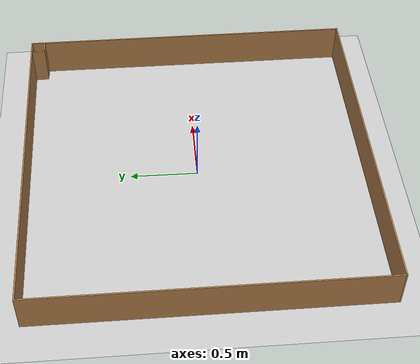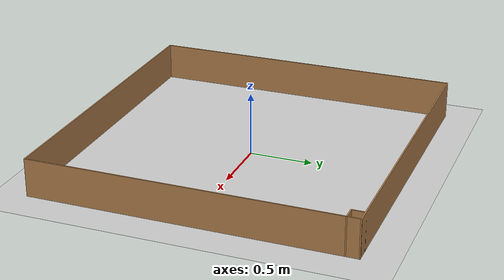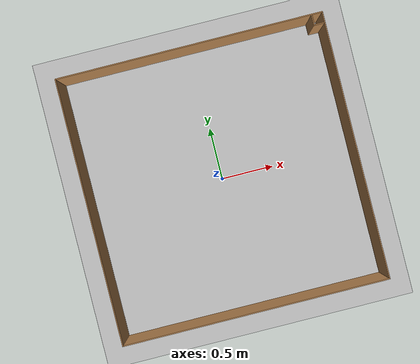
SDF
<sdf version="1.6">
 <world name="default">
  <light name="sun" type="directional">
   <pose>0 0 10 0 -0 0</pose>
   <diffuse>0.8 0.8 0.8 1</diffuse>
   <specular>0.1 0.1 0.1 1</specular>
   <attenuation>
    <range>1000</range>
    <constant>0.9</constant>
    <linear>0.01</linear>
    <quadratic>0.001</quadratic>
   </attenuation>
   <direction>-0.5 0.5 -1</direction>
  </light>
  <model name="ground_plane">
   <static>1</static>
   <link name="link">
    <collision name="collision">
     <geometry><plane><normal>0 0 1</normal><size>100 100</size></plane></geometry>
     <surface><friction><ode><mu>100</mu><mu2>50</mu2></ode></friction></surface>
    </collision>
    <visual name="visual">
     <cast_shadows>0</cast_shadows>
     <geometry><plane><normal>0 0 1</normal><size>100 100</size></plane></geometry>
     <material>
      <script><uri>file://media/materials/scripts/gazebo.material</uri><name>Gazebo/Grey</name></script>
     </material>
    </visual>
   </link>
  </model>
  <gravity>0 0 -9.8</gravity>
  <magnetic_field>6e-06 2.3e-05 -4.2e-05</magnetic_field>
  <atmosphere type="adiabatic"/>
  <physics name="default_physics" default="0" type="ode">
   <max_step_size>0.001</max_step_size>
   <real_time_factor>1</real_time_factor>
   <real_time_update_rate>1000</real_time_update_rate>
  </physics>
  <scene><ambient>0.4 0.4 0.4 1</ambient><background>0.7 0.7 0.7 1</background><shadows>1</shadows></scene>
  <spherical_coordinates>
   <surface_model>EARTH_WGS84</surface_model>
   <latitude_deg>0</latitude_deg>
   <longitude_deg>0</longitude_deg>
   <elevation>0</elevation>
   <heading_deg>0</heading_deg>
  </spherical_coordinates>
  <model name="ParedOrientada">
   <link name="Wall_22">
    <collision name="Wall_22_Collision">
     <geometry><box><size>2.51 0.01 0.3</size></box></geometry>
     <pose>0 0 0.15 0 -0 0</pose>
    </collision>
    <visual name="Wall_22_Visual">
     <pose>0 0 0.15 0 -0 0</pose>
     <geometry><box><size>2.51 0.01 0.3</size></box></geometry>
     <material>
      <script><uri>file://media/materials/scripts/gazebo.material</uri><name>Gazebo/Wood</name></script>
      <ambient>1 1 1 1</ambient>
     </material>
    </visual>
    <pose>-1.25 0 0 0 -0 1.5708</pose>
   </link>
   <link name="Wall_24">
    <collision name="Wall_24_Collision">
     <geometry><box><size>2.51 0.01 0.3</size></box></geometry>
     <pose>0 0 0.15 0 -0 0</pose>
    </collision>
    <visual name="Wall_24_Visual">
     <pose>0 0 0.15 0 -0 0</pose>
     <geometry><box><size>2.51 0.01 0.3</size></box></geometry>
     <material>
      <script><uri>file://media/materials/scripts/gazebo.material</uri><name>Gazebo/Wood</name></script>
      <ambient>1 1 1 1</ambient>
     </material>
    </visual>
    <pose>0 -1.25 0 0 -0 0</pose>
   </link>
   <link name="Wall_28">
    <collision name="Wall_28_Collision">
     <geometry><box><size>2.51 0.01 0.3</size></box></geometry>
     <pose>0 0 0.15 0 -0 0</pose>
    </collision>
    <visual name="Wall_28_Visual">
     <pose>0 0 0.15 0 -0 0</pose>
     <geometry><box><size>2.51 0.01 0.3</size></box></geometry>
     <material>
      <script><uri>file://media/materials/scripts/gazebo.material</uri><name>Gazebo/Wood</name></script>
      <ambient>1 1 1 1</ambient>
     </material>
    </visual>
    <pose>0 1.25 0 0 -0 0</pose>
   </link>
   <link name="Wall_32">
    <collision name="Wall_32_Collision">
     <geometry><box><size>2.51 0.01 0.3</size></box></geometry>
     <pose>0 0 0.15 0 -0 0</pose>
    </collision>
    <visual name="Wall_32_Visual">
     <pose>0 0 0.15 0 -0 0</pose>
     <geometry><box><size>2.51 0.01 0.3</size></box></geometry>
     <material>
      <script><uri>file://media/materials/scripts/gazebo.material</uri><name>Gazebo/Wood</name></script>
      <ambient>1 1 1 1</ambient>
     </material>
    </visual>
    <pose>1.25 0 0 0 -0 1.5708</pose>
   </link>
   <link name="Wall_34">
    <collision name="Wall_34_Collision">
     <geometry><box><size>0.11 0.01 0.3</size></box></geometry>
     <pose>0 0 0.15 0 -0 0</pose>
    </collision>
    <visual name="Wall_34_Visual">
     <pose>0 0 0.15 0 -0 0</pose>
     <geometry><box><size>0.11 0.01 0.3</size></box></geometry>
     <material>
      <script><uri>file://media/materials/scripts/gazebo.material</uri><name>Gazebo/Wood</name></script>
      <ambient>1 1 1 1</ambient>
     </material>
    </visual>
    <pose>1.15 1.2 0 0 0 -1.5708</pose>
   </link>
   <link name="Wall_36">
    <collision name="Wall_36_Collision">
     <geometry><box><size>0.11 0.01 0.3</size></box></geometry>
     <pose>0 0 0.15 0 -0 0</pose>
    </collision>
    <visual name="Wall_36_Visual">
     <pose>0 0 0.15 0 -0 0</pose>
     <geometry><box><size>0.11 0.01 0.3</size></box></geometry>
     <material>
      <script><uri>file://media/materials/scripts/gazebo.material</uri><name>Gazebo/Wood</name></script>
      <ambient>1 1 1 1</ambient>
     </material>
    </visual>
    <pose>1.2 1.15 0 0 -0 0</pose>
   </link>
   <static>1</static>
  </model>
 </world>
</sdf>
